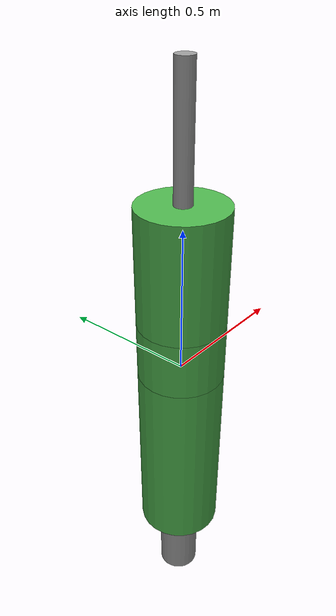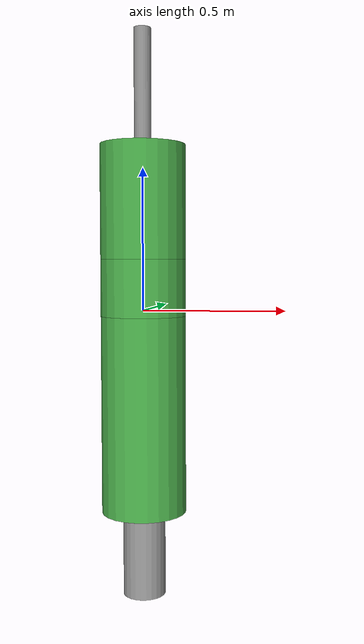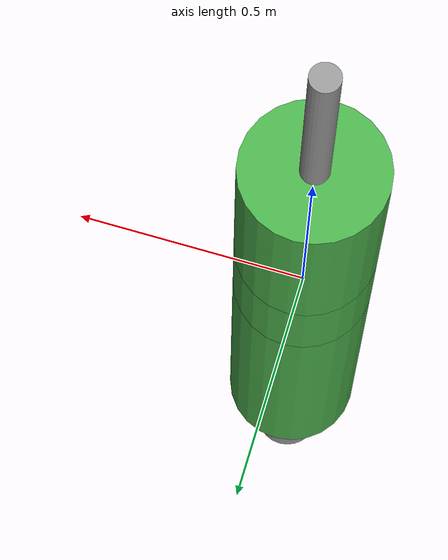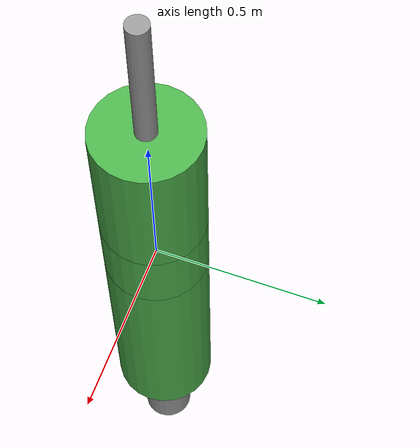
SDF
<?xml version='1.0'?>
<sdf version='1.6'>
  <model name='simfloat_1000'>
    <link name='link_0'>
      <inertial>
        <mass>28.2461</mass>
        <inertia>
          <ixx>0.535498</ixx>
          <ixy>0</ixy>
          <ixz>0</ixz>
          <iyy>0.535498</iyy>
          <iyz>0</iyz>
          <izz>0.317768</izz>
        </inertia>
        <pose frame=''>0 0 0 0 -0 0</pose>
      </inertial>
      <pose frame=''>0 1e-06 0.379999 0 -0 0</pose>
      <gravity>1</gravity>
      <self_collide>0</self_collide>
      <kinematic>0</kinematic>
      <enable_wind>0</enable_wind>
      <visual name='visual'>
        <pose frame=''>0 0 0 0 -0 0</pose>
        <geometry>
          <cylinder>
            <radius>0.15</radius>
            <length>0.4</length>
          </cylinder>
        </geometry>
        <material>
          <lighting>1</lighting>
          <script>
            <uri>file://media/materials/scripts/gazebo.material</uri>
            <name>Gazebo/Grey</name>
          </script>
          <shader type='pixel'>
            <normal_map>__default__</normal_map>
          </shader>
          <ambient>0.3 0.7 0.3 1</ambient>
          <diffuse>0.7 0.7 0.7 1</diffuse>
          <specular>0.01 0.01 0.01 1</specular>
          <emissive>0 0 0 1</emissive>
        </material>
        <transparency>0</transparency>
        <cast_shadows>1</cast_shadows>
      </visual>
      <collision name='collision'>
        <laser_retro>0</laser_retro>
        <max_contacts>10</max_contacts>
        <pose frame=''>0 0 0 0 -0 0</pose>
        <geometry>
          <cylinder>
            <radius>0.15</radius>
            <length>0.4</length>
          </cylinder>
        </geometry>
        <surface>
          <friction>
            <ode>
              <mu>1</mu>
              <mu2>1</mu2>
              <fdir1>0 0 0</fdir1>
              <slip1>0</slip1>
              <slip2>0</slip2>
            </ode>
            <torsional>
              <coefficient>1</coefficient>
              <patch_radius>0</patch_radius>
              <surface_radius>0</surface_radius>
              <use_patch_radius>1</use_patch_radius>
              <ode>
                <slip>0</slip>
              </ode>
            </torsional>
          </friction>
          <bounce>
            <restitution_coefficient>0</restitution_coefficient>
            <threshold>1e+06</threshold>
          </bounce>
          <contact>
            <collide_without_contact>0</collide_without_contact>
            <collide_without_contact_bitmask>1</collide_without_contact_bitmask>
            <collide_bitmask>1</collide_bitmask>
            <ode>
              <soft_cfm>0</soft_cfm>
              <soft_erp>0.2</soft_erp>
              <kp>1e+13</kp>
              <kd>1</kd>
              <max_vel>0.01</max_vel>
              <min_depth>0</min_depth>
            </ode>
            <bullet>
              <split_impulse>1</split_impulse>
              <split_impulse_penetration_threshold>-0.01</split_impulse_penetration_threshold>
              <soft_cfm>0</soft_cfm>
              <soft_erp>0.2</soft_erp>
              <kp>1e+13</kp>
              <kd>1</kd>
            </bullet>
          </contact>
        </surface>
      </collision>
    </link>
    <link name='link_0_clone'>
      <inertial>
        <mass>49.4801</mass>
        <inertia>
          <ixx>2.29876</ixx>
          <ixy>0</ixy>
          <ixz>0</ixz>
          <iyy>2.29876</iyy>
          <iyz>0</iyz>
          <izz>0.556651</izz>
        </inertia>
        <pose frame=''>0 0 0 0 -0 0</pose>
      </inertial>
      <pose frame=''>-0 -1e-06 -0.369999 0 -0 0</pose>
      <gravity>1</gravity>
      <self_collide>0</self_collide>
      <kinematic>0</kinematic>
      <enable_wind>0</enable_wind>
      <visual name='visual'>
        <pose frame=''>0 0 0 0 -0 0</pose>
        <geometry>
          <cylinder>
            <radius>0.15</radius>
            <length>0.7</length>
          </cylinder>
        </geometry>
        <material>
          <lighting>1</lighting>
          <script>
            <uri>file://media/materials/scripts/gazebo.material</uri>
            <name>Gazebo/Grey</name>
          </script>
          <shader type='pixel'>
            <normal_map>__default__</normal_map>
          </shader>
          <ambient>0.3 0.7 0.3 1</ambient>
          <diffuse>0.7 0.7 0.7 1</diffuse>
          <specular>0.01 0.01 0.01 1</specular>
          <emissive>0 0 0 1</emissive>
        </material>
        <transparency>0</transparency>
        <cast_shadows>1</cast_shadows>
      </visual>
      <collision name='collision'>
        <laser_retro>0</laser_retro>
        <max_contacts>10</max_contacts>
        <pose frame=''>0 0 0 0 -0 0</pose>
        <geometry>
          <cylinder>
            <radius>0.15</radius>
            <length>0.7</length>
          </cylinder>
        </geometry>
        <surface>
          <friction>
            <ode>
              <mu>1</mu>
              <mu2>1</mu2>
              <fdir1>0 0 0</fdir1>
              <slip1>0</slip1>
              <slip2>0</slip2>
            </ode>
            <torsional>
              <coefficient>1</coefficient>
              <patch_radius>0</patch_radius>
              <surface_radius>0</surface_radius>
              <use_patch_radius>1</use_patch_radius>
              <ode>
                <slip>0</slip>
              </ode>
            </torsional>
          </friction>
          <bounce>
            <restitution_coefficient>0</restitution_coefficient>
            <threshold>1e+06</threshold>
          </bounce>
          <contact>
            <collide_without_contact>0</collide_without_contact>
            <collide_without_contact_bitmask>1</collide_without_contact_bitmask>
            <collide_bitmask>1</collide_bitmask>
            <ode>
              <soft_cfm>0</soft_cfm>
              <soft_erp>0.2</soft_erp>
              <kp>1e+13</kp>
              <kd>1</kd>
              <max_vel>0.01</max_vel>
              <min_depth>0</min_depth>
            </ode>
            <bullet>
              <split_impulse>1</split_impulse>
              <split_impulse_penetration_threshold>-0.01</split_impulse_penetration_threshold>
              <soft_cfm>0</soft_cfm>
              <soft_erp>0.2</soft_erp>
              <kp>1e+13</kp>
              <kd>1</kd>
            </bullet>
          </contact>
        </surface>
      </collision>
    </link>
    <link name='link_0_clone_0'>
      <inertial>
        <mass>1.12984</mass>
        <inertia>
          <ixx>0.0153188</ixx>
          <ixy>0</ixy>
          <ixz>0</ixz>
          <iyy>0.0153188</iyy>
          <iyz>0</iyz>
          <izz>0.00050843</izz>
        </inertia>
        <pose frame=''>0 0 0 0 -0 0</pose>
      </inertial>
      <pose frame=''>1e-06 3e-06 0.78 0 -0 0</pose>
      <gravity>1</gravity>
      <self_collide>0</self_collide>
      <kinematic>0</kinematic>
      <enable_wind>0</enable_wind>
      <visual name='visual'>
        <pose frame=''>0 0 0 0 -0 0</pose>
        <geometry>
          <cylinder>
            <radius>0.03</radius>
            <length>0.4</length>
          </cylinder>
        </geometry>
        <material>
          <lighting>1</lighting>
          <script>
            <uri>file://media/materials/scripts/gazebo.material</uri>
            <name>Gazebo/Grey</name>
          </script>
          <shader type='pixel'>
            <normal_map>__default__</normal_map>
          </shader>
          <ambient>0.1 0.1 0.1 1</ambient>
          <diffuse>0.7 0.7 0.7 1</diffuse>
          <specular>0.01 0.01 0.01 1</specular>
          <emissive>0 0 0 1</emissive>
        </material>
        <transparency>0</transparency>
        <cast_shadows>1</cast_shadows>
      </visual>
      <collision name='collision'>
        <laser_retro>0</laser_retro>
        <max_contacts>10</max_contacts>
        <pose frame=''>0 0 0 0 -0 0</pose>
        <geometry>
          <cylinder>
            <radius>0.03</radius>
            <length>0.4</length>
          </cylinder>
        </geometry>
        <surface>
          <friction>
            <ode>
              <mu>1</mu>
              <mu2>1</mu2>
              <fdir1>0 0 0</fdir1>
              <slip1>0</slip1>
              <slip2>0</slip2>
            </ode>
            <torsional>
              <coefficient>1</coefficient>
              <patch_radius>0</patch_radius>
              <surface_radius>0</surface_radius>
              <use_patch_radius>1</use_patch_radius>
              <ode>
                <slip>0</slip>
              </ode>
            </torsional>
          </friction>
          <bounce>
            <restitution_coefficient>0</restitution_coefficient>
            <threshold>1e+06</threshold>
          </bounce>
          <contact>
            <collide_without_contact>0</collide_without_contact>
            <collide_without_contact_bitmask>1</collide_without_contact_bitmask>
            <collide_bitmask>1</collide_bitmask>
            <ode>
              <soft_cfm>0</soft_cfm>
              <soft_erp>0.2</soft_erp>
              <kp>1e+13</kp>
              <kd>1</kd>
              <max_vel>0.01</max_vel>
              <min_depth>0</min_depth>
            </ode>
            <bullet>
              <split_impulse>1</split_impulse>
              <split_impulse_penetration_threshold>-0.01</split_impulse_penetration_threshold>
              <soft_cfm>0</soft_cfm>
              <soft_erp>0.2</soft_erp>
              <kp>1e+13</kp>
              <kd>1</kd>
            </bullet>
          </contact>
        </surface>
      </collision>
    </link>
    <link name='link_0_clone_0_clone'>
      <inertial>
        <mass>5.30144</mass>
        <inertia>
          <ixx>0.0472159</ixx>
          <ixy>0</ixy>
          <ixz>0</ixz>
          <iyy>0.0472159</iyy>
          <iyz>0</iyz>
          <izz>0.0149103</izz>
        </inertia>
        <pose frame=''>0 0 0 0 -0 0</pose>
      </inertial>
      <pose frame=''>-1e-06 -3e-06 -0.869999 0 -0 0</pose>
      <gravity>1</gravity>
      <self_collide>0</self_collide>
      <kinematic>0</kinematic>
      <enable_wind>0</enable_wind>
      <visual name='visual'>
        <pose frame=''>0 0 0 0 -0 0</pose>
        <geometry>
          <cylinder>
            <radius>0.075</radius>
            <length>0.3</length>
          </cylinder>
        </geometry>
        <material>
          <lighting>1</lighting>
          <script>
            <uri>file://media/materials/scripts/gazebo.material</uri>
            <name>Gazebo/Grey</name>
          </script>
          <shader type='pixel'>
            <normal_map>__default__</normal_map>
          </shader>
          <ambient>0.1 0.1 0.1 1</ambient>
          <diffuse>0.7 0.7 0.7 1</diffuse>
          <specular>0.01 0.01 0.01 1</specular>
          <emissive>0 0 0 1</emissive>
        </material>
        <transparency>0</transparency>
        <cast_shadows>1</cast_shadows>
      </visual>
      <collision name='collision'>
        <laser_retro>0</laser_retro>
        <max_contacts>10</max_contacts>
        <pose frame=''>0 0 0 0 -0 0</pose>
        <geometry>
          <cylinder>
            <radius>0.075</radius>
            <length>0.3</length>
          </cylinder>
        </geometry>
        <surface>
          <friction>
            <ode>
              <mu>1</mu>
              <mu2>1</mu2>
              <fdir1>0 0 0</fdir1>
              <slip1>0</slip1>
              <slip2>0</slip2>
            </ode>
            <torsional>
              <coefficient>1</coefficient>
              <patch_radius>0</patch_radius>
              <surface_radius>0</surface_radius>
              <use_patch_radius>1</use_patch_radius>
              <ode>
                <slip>0</slip>
              </ode>
            </torsional>
          </friction>
          <bounce>
            <restitution_coefficient>0</restitution_coefficient>
            <threshold>1e+06</threshold>
          </bounce>
          <contact>
            <collide_without_contact>0</collide_without_contact>
            <collide_without_contact_bitmask>1</collide_without_contact_bitmask>
            <collide_bitmask>1</collide_bitmask>
            <ode>
              <soft_cfm>0</soft_cfm>
              <soft_erp>0.2</soft_erp>
              <kp>1e+13</kp>
              <kd>1</kd>
              <max_vel>0.01</max_vel>
              <min_depth>0</min_depth>
            </ode>
            <bullet>
              <split_impulse>1</split_impulse>
              <split_impulse_penetration_threshold>-0.01</split_impulse_penetration_threshold>
              <soft_cfm>0</soft_cfm>
              <soft_erp>0.2</soft_erp>
              <kp>1e+13</kp>
              <kd>1</kd>
            </bullet>
          </contact>
        </surface>
      </collision>
    </link>
    <link name='link_0_clone_clone'>
      <inertial>
        <mass>14.1372</mass>
        <inertia>
          <ixx>0.126645</ixx>
          <ixy>0</ixy>
          <ixz>0</ixz>
          <iyy>0.126645</iyy>
          <iyz>0</iyz>
          <izz>0.159043</izz>
        </inertia>
        <pose frame=''>0 0 0 0 -0 0</pose>
      </inertial>
      <pose frame=''>0 0 0.079999 0 -0 0</pose>
      <gravity>1</gravity>
      <self_collide>0</self_collide>
      <kinematic>0</kinematic>
      <enable_wind>0</enable_wind>
      <visual name='visual'>
        <pose frame=''>0 0 0 0 -0 0</pose>
        <geometry>
          <cylinder>
            <radius>0.15</radius>
            <length>0.2</length>
          </cylinder>
        </geometry>
        <material>
          <lighting>1</lighting>
          <script>
            <uri>file://media/materials/scripts/gazebo.material</uri>
            <name>Gazebo/Grey</name>
          </script>
          <shader type='pixel'>
            <normal_map>__default__</normal_map>
          </shader>
          <ambient>0.3 0.7 0.3 1</ambient>
          <diffuse>0.7 0.7 0.7 1</diffuse>
          <specular>0.01 0.01 0.01 1</specular>
          <emissive>0 0 0 1</emissive>
        </material>
        <transparency>0</transparency>
        <cast_shadows>1</cast_shadows>
      </visual>
      <collision name='collision'>
        <laser_retro>0</laser_retro>
        <max_contacts>10</max_contacts>
        <pose frame=''>0 0 0 0 -0 0</pose>
        <geometry>
          <cylinder>
            <radius>0.15</radius>
            <length>0.2</length>
          </cylinder>
        </geometry>
        <surface>
          <friction>
            <ode>
              <mu>1</mu>
              <mu2>1</mu2>
              <fdir1>0 0 0</fdir1>
              <slip1>0</slip1>
              <slip2>0</slip2>
            </ode>
            <torsional>
              <coefficient>1</coefficient>
              <patch_radius>0</patch_radius>
              <surface_radius>0</surface_radius>
              <use_patch_radius>1</use_patch_radius>
              <ode>
                <slip>0</slip>
              </ode>
            </torsional>
          </friction>
          <bounce>
            <restitution_coefficient>0</restitution_coefficient>
            <threshold>1e+06</threshold>
          </bounce>
          <contact>
            <collide_without_contact>0</collide_without_contact>
            <collide_without_contact_bitmask>1</collide_without_contact_bitmask>
            <collide_bitmask>1</collide_bitmask>
            <ode>
              <soft_cfm>0</soft_cfm>
              <soft_erp>0.2</soft_erp>
              <kp>1e+13</kp>
              <kd>1</kd>
              <max_vel>0.01</max_vel>
              <min_depth>0</min_depth>
            </ode>
            <bullet>
              <split_impulse>1</split_impulse>
              <split_impulse_penetration_threshold>-0.01</split_impulse_penetration_threshold>
              <soft_cfm>0</soft_cfm>
              <soft_erp>0.2</soft_erp>
              <kp>1e+13</kp>
              <kd>1</kd>
            </bullet>
          </contact>
        </surface>
      </collision>
    </link>
    <joint name='link_0_JOINT_2' type='fixed'>
      <parent>link_0</parent>
      <child>link_0_clone_0</child>
      <pose frame=''>0 0 0 0 -0 0</pose>
      <physics>
        <ode>
          <limit>
            <cfm>0</cfm>
            <erp>0.2</erp>
          </limit>
          <suspension>
            <cfm>0</cfm>
            <erp>0.2</erp>
          </suspension>
        </ode>
      </physics>
    </joint>
    <joint name='link_0_clone_JOINT_0' type='fixed'>
      <parent>link_0_clone</parent>
      <child>link_0_clone_clone</child>
      <pose frame=''>0 0 0 0 -0 0</pose>
      <physics>
        <ode>
          <limit>
            <cfm>0</cfm>
            <erp>0.2</erp>
          </limit>
          <suspension>
            <cfm>0</cfm>
            <erp>0.2</erp>
          </suspension>
        </ode>
      </physics>
    </joint>
    <joint name='link_0_clone_JOINT_4' type='revolute'>
      <parent>link_0_clone</parent>
      <child>link_0_clone_0_clone</child>
      <pose frame=''>0 0 0 0 -0 0</pose>
      <axis>
        <xyz>1 0 0</xyz>
        <use_parent_model_frame>0</use_parent_model_frame>
        <limit>
          <lower>-1.79769e+308</lower>
          <upper>1.79769e+308</upper>
          <effort>-1</effort>
          <velocity>-1</velocity>
        </limit>
        <dynamics>
          <spring_reference>0</spring_reference>
          <spring_stiffness>0</spring_stiffness>
          <damping>0</damping>
          <friction>0</friction>
        </dynamics>
      </axis>
      <physics>
        <ode>
          <limit>
            <cfm>0</cfm>
            <erp>0.2</erp>
          </limit>
          <suspension>
            <cfm>0</cfm>
            <erp>0.2</erp>
          </suspension>
        </ode>
      </physics>
    </joint>
    <joint name='link_0_clone_clone_JOINT_1' type='revolute'>
      <parent>link_0_clone_clone</parent>
      <child>link_0</child>
      <pose frame=''>0 0 0 0 -0 0</pose>
      <axis>
        <xyz>1 0 0</xyz>
        <use_parent_model_frame>0</use_parent_model_frame>
        <limit>
          <lower>-1.79769e+308</lower>
          <upper>1.79769e+308</upper>
          <effort>-1</effort>
          <velocity>-1</velocity>
        </limit>
        <dynamics>
          <spring_reference>0</spring_reference>
          <spring_stiffness>0</spring_stiffness>
          <damping>0</damping>
          <friction>0</friction>
        </dynamics>
      </axis>
      <physics>
        <ode>
          <limit>
            <cfm>0</cfm>
            <erp>0.2</erp>
          </limit>
          <suspension>
            <cfm>0</cfm>
            <erp>0.2</erp>
          </suspension>
        </ode>
      </physics>
    </joint>
    <static>0</static>
    <allow_auto_disable>1</allow_auto_disable>
  </model>
</sdf>
